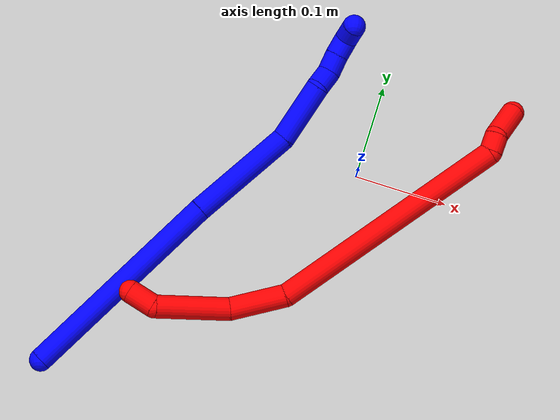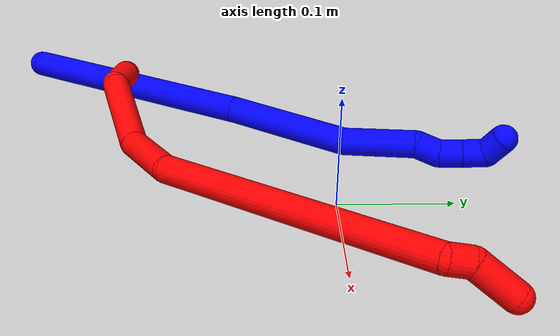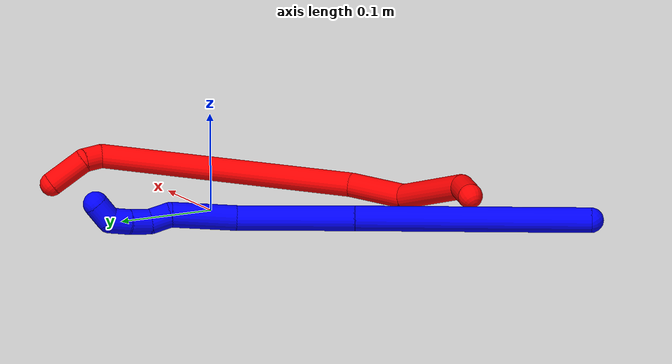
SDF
<sdf version="1.7">
 <world name="default">
  <plugin name="TubeGeneratorPlugin" filename="libtube_generator_plugin.so"/>
  <model name="photoneo_s_sensor">
   <static>1</static>
   <pose>0 0 2 1.57079 1.57079 3.14159</pose>
   <link name="link">
    <inertial><mass>0.1</mass></inertial>
    <sensor name="sensor" type="depth">
     <update_rate>30</update_rate>
     <camera>
      <horizontal_fov>1.22</horizontal_fov>
      <image><width>1920</width><height>1200</height><format>B8G8R8</format></image>
      <clip><near>0.1</near><far>4</far></clip>
      <depth_camera><output>points</output></depth_camera>
     </camera>
     <plugin name="camera_plugin" filename="libgazebo_ros_depth_camera.so">
      <baseline>0.2</baseline>
      <alwaysOn>1</alwaysOn>
      <updateRate>0.0</updateRate>
      <cameraName>camera_ir</cameraName>
      <imageTopicName>/camera/color/image_raw</imageTopicName>
      <cameraInfoTopicName>/camera/color/camera_info</cameraInfoTopicName>
      <depthImageTopicName>/camera/depth/image_raw</depthImageTopicName>
      <depthImageCameraInfoTopicName>/camera/depth/camera_info</depthImageCameraInfoTopicName>
      <pointCloudTopicName>/camera/depth/points</pointCloudTopicName>
      <frameName>fr_optical</frameName>
      <pointCloudCutoff>0.1</pointCloudCutoff>
      <pointCloudCutoffMax>2.0</pointCloudCutoffMax>
      <distortionK1>0</distortionK1>
      <distortionK2>0</distortionK2>
      <distortionK3>0</distortionK3>
      <distortionT1>0</distortionT1>
      <distortionT2>0</distortionT2>
      <CxPrime>0</CxPrime>
      <Cx>0</Cx>
      <Cy>0</Cy>
      <focalLength>0</focalLength>
      <hackBaseline>0</hackBaseline>
     </plugin>
    </sensor>
   </link>
  </model>
  <gravity>0 0 -9.8</gravity>
  <magnetic_field>6e-06 2.3e-05 -4.2e-05</magnetic_field>
  <atmosphere type="adiabatic"/>
  <physics name="default_physics" default="0" type="ode">
   <max_step_size>0.003</max_step_size>
   <real_time_factor>1</real_time_factor>
   <real_time_update_rate>1000</real_time_update_rate>
   <max_contacts>10000</max_contacts>
   <ode>
    <solver>
     <type>quick</type>
     <iters>100</iters>
     <sor>1.3</sor>
     <use_dynamic_moi_rescaling>0</use_dynamic_moi_rescaling>
    </solver>
    <constraints>
     <contact_max_correcting_vel>0</contact_max_correcting_vel>
     <contact_surface_layer>0.001</contact_surface_layer>
     <cfm>0</cfm>
     <erp>0.2</erp>
    </constraints>
   </ode>
  </physics>
  <scene><ambient>0.4 0.4 0.4 1</ambient><background>0.7 0.7 0.7 1</background><shadows>0</shadows></scene>
  <audio><device>default</device></audio>
  <spherical_coordinates>
   <surface_model>EARTH_WGS84</surface_model>
   <latitude_deg>0</latitude_deg>
   <longitude_deg>0</longitude_deg>
   <elevation>0</elevation>
   <heading_deg>0</heading_deg>
  </spherical_coordinates>
  <model name="bin">
   <static>1</static>
   <link name="bottom">
    <collision name="collision-bottom">
     <pose>0 0 -0.01 0 -0 0</pose>
     <geometry><box><size>0.8 0.6 0.02</size></box></geometry>
     <surface>
      <friction><ode><mu>100</mu><mu2>100</mu2></ode></friction>
      <contact><collide_bitmask>65535</collide_bitmask></contact>
     </surface>
    </collision>
   </link>
   <link name="west_wall">
    <collision name="collision-west_wall">
     <pose>-0.41 0 0.1 0 -0 0</pose>
     <geometry><box><size>0.02 0.6 0.2</size></box></geometry>
     <surface>
      <friction><ode><mu>100</mu><mu2>100</mu2></ode></friction>
      <contact><collide_bitmask>65535</collide_bitmask></contact>
     </surface>
    </collision>
   </link>
   <link name="east_wall">
    <collision name="collision-east_wall">
     <pose>0.41 0 0.1 0 -0 0</pose>
     <geometry><box><size>0.02 0.6 0.2</size></box></geometry>
     <surface>
      <friction><ode><mu>100</mu><mu2>100</mu2></ode></friction>
      <contact><collide_bitmask>65535</collide_bitmask></contact>
     </surface>
    </collision>
   </link>
   <link name="south_wall">
    <collision name="collision-south_wall">
     <pose>0 -0.31 0.1 0 -0 0</pose>
     <geometry><box><size>0.8 0.02 0.2</size></box></geometry>
     <surface>
      <friction><ode><mu>100</mu><mu2>100</mu2></ode></friction>
      <contact><collide_bitmask>65535</collide_bitmask></contact>
     </surface>
    </collision>
   </link>
   <link name="north_wall">
    <collision name="collision-north_wall">
     <pose>0 0.31 0.1 0 -0 0</pose>
     <geometry><box><size>0.8 0.02 0.2</size></box></geometry>
     <surface>
      <friction><ode><mu>100</mu><mu2>100</mu2></ode></friction>
      <contact><collide_bitmask>65535</collide_bitmask></contact>
     </surface>
    </collision>
   </link>
  </model>
  <model name="1">
   <static>0</static>
   <link name="1">
    <collision name="collision-cylinder-e_1_1_4">
     <pose>0.043041 0.074659 -0.0781 -2.37872 0.379093 -0.892327</pose>
     <geometry><cylinder><radius>0.0125</radius><length>0.232603</length></cylinder></geometry>
     <surface>
      <friction><ode><mu>1.16</mu><mu2>1.16</mu2><slip1>0</slip1><slip2>0</slip2></ode></friction>
      <contact><ode><kp>1e+06</kp><kd>1</kd><max_vel>0</max_vel><min_depth>0.001</min_depth></ode></contact>
     </surface>
    </collision>
    <visual name="visual-cylinder-e_1_1_4">
     <pose>0.043041 0.074659 -0.0781 -2.37872 0.379093 -0.892327</pose>
     <geometry><cylinder><radius>0.0125</radius><length>0.232603</length></cylinder></geometry>
     <material><ambient>0 0 1 1</ambient></material>
    </visual>
    <collision name="collision-cylinder-e_2_4_5">
     <pose>0.110505 0.186871 -0.194077 -2.36049 0.429411 -0.974212</pose>
     <geometry><cylinder><radius>0.0125</radius><length>0.117329</length></cylinder></geometry>
     <surface>
      <friction><ode><mu>1.16</mu><mu2>1.16</mu2><slip1>0</slip1><slip2>0</slip2></ode></friction>
      <contact><ode><kp>1e+06</kp><kd>1</kd><max_vel>0</max_vel><min_depth>0.001</min_depth></ode></contact>
     </surface>
    </collision>
    <visual name="visual-cylinder-e_2_4_5">
     <pose>0.110505 0.186871 -0.194077 -2.36049 0.429411 -0.974212</pose>
     <geometry><cylinder><radius>0.0125</radius><length>0.117329</length></cylinder></geometry>
     <material><ambient>0 0 1 1</ambient></material>
    </visual>
    <collision name="collision-cylinder-e_3_5_6">
     <pose>0.139721 0.24566 -0.256874 -2.43582 0.145332 -0.390264</pose>
     <geometry><cylinder><radius>0.0125</radius><length>0.066178</length></cylinder></geometry>
     <surface>
      <friction><ode><mu>1.16</mu><mu2>1.16</mu2><slip1>0</slip1><slip2>0</slip2></ode></friction>
      <contact><ode><kp>1e+06</kp><kd>1</kd><max_vel>0</max_vel><min_depth>0.001</min_depth></ode></contact>
     </surface>
    </collision>
    <visual name="visual-cylinder-e_3_5_6">
     <pose>0.139721 0.24566 -0.256874 -2.43582 0.145332 -0.390264</pose>
     <geometry><cylinder><radius>0.0125</radius><length>0.066178</length></cylinder></geometry>
     <material><ambient>0 0 1 1</ambient></material>
    </visual>
    <collision name="collision-cylinder-e_4_6_7">
     <pose>0.148574 0.270534 -0.290789 -2.75729 0.396283 -1.60227</pose>
     <geometry><cylinder><radius>0.0125</radius><length>0.021039</length></cylinder></geometry>
     <surface>
      <friction><ode><mu>1.16</mu><mu2>1.16</mu2><slip1>0</slip1><slip2>0</slip2></ode></friction>
      <contact><ode><kp>1e+06</kp><kd>1</kd><max_vel>0</max_vel><min_depth>0.001</min_depth></ode></contact>
     </surface>
    </collision>
    <visual name="visual-cylinder-e_4_6_7">
     <pose>0.148574 0.270534 -0.290789 -2.75729 0.396283 -1.60227</pose>
     <geometry><cylinder><radius>0.0125</radius><length>0.021039</length></cylinder></geometry>
     <material><ambient>0 0 1 1</ambient></material>
    </visual>
    <collision name="collision-cylinder-e_5_7_8">
     <pose>0.15308 0.280044 -0.308571 -2.55244 0.042227 -0.138975</pose>
     <geometry><cylinder><radius>0.0125</radius><length>0.021152</length></cylinder></geometry>
     <surface>
      <friction><ode><mu>1.16</mu><mu2>1.16</mu2><slip1>0</slip1><slip2>0</slip2></ode></friction>
      <contact><ode><kp>1e+06</kp><kd>1</kd><max_vel>0</max_vel><min_depth>0.001</min_depth></ode></contact>
     </surface>
    </collision>
    <visual name="visual-cylinder-e_5_7_8">
     <pose>0.15308 0.280044 -0.308571 -2.55244 0.042227 -0.138975</pose>
     <geometry><cylinder><radius>0.0125</radius><length>0.021152</length></cylinder></geometry>
     <material><ambient>0 0 1 1</ambient></material>
    </visual>
    <collision name="collision-cylinder-e_6_8_9">
     <pose>0.154283 0.292465 -0.325083 -2.43849 0.074482 -0.202464</pose>
     <geometry><cylinder><radius>0.0125</radius><length>0.020313</length></cylinder></geometry>
     <surface>
      <friction><ode><mu>1.16</mu><mu2>1.16</mu2><slip1>0</slip1><slip2>0</slip2></ode></friction>
      <contact><ode><kp>1e+06</kp><kd>1</kd><max_vel>0</max_vel><min_depth>0.001</min_depth></ode></contact>
     </surface>
    </collision>
    <visual name="visual-cylinder-e_6_8_9">
     <pose>0.154283 0.292465 -0.325083 -2.43849 0.074482 -0.202464</pose>
     <geometry><cylinder><radius>0.0125</radius><length>0.020313</length></cylinder></geometry>
     <material><ambient>0 0 1 1</ambient></material>
    </visual>
    <collision name="collision-cylinder-e_7_9_2">
     <pose>0.151897 0.309075 -0.334611 -1.74796 -0.29817 0.355179</pose>
     <geometry><cylinder><radius>0.0125</radius><length>0.021386</length></cylinder></geometry>
     <surface>
      <friction><ode><mu>1.16</mu><mu2>1.16</mu2><slip1>0</slip1><slip2>0</slip2></ode></friction>
      <contact><ode><kp>1e+06</kp><kd>1</kd><max_vel>0</max_vel><min_depth>0.001</min_depth></ode></contact>
     </surface>
    </collision>
    <visual name="visual-cylinder-e_7_9_2">
     <pose>0.151897 0.309075 -0.334611 -1.74796 -0.29817 0.355179</pose>
     <geometry><cylinder><radius>0.0125</radius><length>0.021386</length></cylinder></geometry>
     <material><ambient>0 0 1 1</ambient></material>
    </visual>
    <collision name="collision-sphere-2">
     <pose>0.148756 0.319136 -0.336412 0 -0 0</pose>
     <geometry><sphere><radius>0.0125</radius></sphere></geometry>
     <surface>
      <friction><ode><mu>1.16</mu><mu2>1.16</mu2><slip1>0</slip1><slip2>0</slip2></ode></friction>
      <contact><ode><kp>1e+06</kp><kd>1</kd><max_vel>0</max_vel><min_depth>0.001</min_depth></ode></contact>
     </surface>
    </collision>
    <visual name="visual-sphere-2">
     <pose>0.148756 0.319136 -0.336412 0 -0 0</pose>
     <geometry><sphere><radius>0.0125</radius></sphere></geometry>
     <material><ambient>0 0 1 1</ambient></material>
    </visual>
    <collision name="collision-sphere-9">
     <pose>0.155039 0.299014 -0.332809 0 -0 0</pose>
     <geometry><sphere><radius>0.0125</radius></sphere></geometry>
     <surface>
      <friction><ode><mu>1.16</mu><mu2>1.16</mu2><slip1>0</slip1><slip2>0</slip2></ode></friction>
      <contact><ode><kp>1e+06</kp><kd>1</kd><max_vel>0</max_vel><min_depth>0.001</min_depth></ode></contact>
     </surface>
    </collision>
    <visual name="visual-sphere-9">
     <pose>0.155039 0.299014 -0.332809 0 -0 0</pose>
     <geometry><sphere><radius>0.0125</radius></sphere></geometry>
     <material><ambient>0 0 1 1</ambient></material>
    </visual>
    <collision name="collision-sphere-4">
     <pose>0.086081 0.149317 -0.1562 0 -0 0</pose>
     <geometry><sphere><radius>0.0125</radius></sphere></geometry>
     <surface>
      <friction><ode><mu>1.16</mu><mu2>1.16</mu2><slip1>0</slip1><slip2>0</slip2></ode></friction>
      <contact><ode><kp>1e+06</kp><kd>1</kd><max_vel>0</max_vel><min_depth>0.001</min_depth></ode></contact>
     </surface>
    </collision>
    <visual name="visual-sphere-4">
     <pose>0.086081 0.149317 -0.1562 0 -0 0</pose>
     <geometry><sphere><radius>0.0125</radius></sphere></geometry>
     <material><ambient>0 0 1 1</ambient></material>
    </visual>
    <collision name="collision-sphere-1">
     <geometry><sphere><radius>0.0125</radius></sphere></geometry>
     <surface>
      <friction><ode><mu>1.16</mu><mu2>1.16</mu2><slip1>0</slip1><slip2>0</slip2></ode></friction>
      <contact><ode><kp>1e+06</kp><kd>1</kd><max_vel>0</max_vel><min_depth>0.001</min_depth></ode></contact>
     </surface>
    </collision>
    <visual name="visual-sphere-1">
     <geometry><sphere><radius>0.0125</radius></sphere></geometry>
     <material><ambient>0 0 1 1</ambient></material>
    </visual>
    <collision name="collision-sphere-8">
     <pose>0.153527 0.285916 -0.317356 0 -0 0</pose>
     <geometry><sphere><radius>0.0125</radius></sphere></geometry>
     <surface>
      <friction><ode><mu>1.16</mu><mu2>1.16</mu2><slip1>0</slip1><slip2>0</slip2></ode></friction>
      <contact><ode><kp>1e+06</kp><kd>1</kd><max_vel>0</max_vel><min_depth>0.001</min_depth></ode></contact>
     </surface>
    </collision>
    <visual name="visual-sphere-8">
     <pose>0.153527 0.285916 -0.317356 0 -0 0</pose>
     <geometry><sphere><radius>0.0125</radius></sphere></geometry>
     <material><ambient>0 0 1 1</ambient></material>
    </visual>
    <collision name="collision-sphere-5">
     <pose>0.134929 0.224424 -0.231955 0 -0 0</pose>
     <geometry><sphere><radius>0.0125</radius></sphere></geometry>
     <surface>
      <friction><ode><mu>1.16</mu><mu2>1.16</mu2><slip1>0</slip1><slip2>0</slip2></ode></friction>
      <contact><ode><kp>1e+06</kp><kd>1</kd><max_vel>0</max_vel><min_depth>0.001</min_depth></ode></contact>
     </surface>
    </collision>
    <visual name="visual-sphere-5">
     <pose>0.134929 0.224424 -0.231955 0 -0 0</pose>
     <geometry><sphere><radius>0.0125</radius></sphere></geometry>
     <material><ambient>0 0 1 1</ambient></material>
    </visual>
    <collision name="collision-sphere-6">
     <pose>0.144513 0.266896 -0.281793 0 -0 0</pose>
     <geometry><sphere><radius>0.0125</radius></sphere></geometry>
     <surface>
      <friction><ode><mu>1.16</mu><mu2>1.16</mu2><slip1>0</slip1><slip2>0</slip2></ode></friction>
      <contact><ode><kp>1e+06</kp><kd>1</kd><max_vel>0</max_vel><min_depth>0.001</min_depth></ode></contact>
     </surface>
    </collision>
    <visual name="visual-sphere-6">
     <pose>0.144513 0.266896 -0.281793 0 -0 0</pose>
     <geometry><sphere><radius>0.0125</radius></sphere></geometry>
     <material><ambient>0 0 1 1</ambient></material>
    </visual>
    <collision name="collision-sphere-7">
     <pose>0.152634 0.274173 -0.299786 0 -0 0</pose>
     <geometry><sphere><radius>0.0125</radius></sphere></geometry>
     <surface>
      <friction><ode><mu>1.16</mu><mu2>1.16</mu2><slip1>0</slip1><slip2>0</slip2></ode></friction>
      <contact><ode><kp>1e+06</kp><kd>1</kd><max_vel>0</max_vel><min_depth>0.001</min_depth></ode></contact>
     </surface>
    </collision>
    <visual name="visual-sphere-7">
     <pose>0.152634 0.274173 -0.299786 0 -0 0</pose>
     <geometry><sphere><radius>0.0125</radius></sphere></geometry>
     <material><ambient>0 0 1 1</ambient></material>
    </visual>
    <inertial>
     <pose>0.089939 0.159429 -0.168682 0 -0 0</pose>
     <mass>0.5</mass>
     <inertia>
      <ixx>-0.000153</ixx>
      <ixy>0</ixy>
      <ixz>0</ixz>
      <iyy>-0.001168</iyy>
      <iyz>0</iyz>
      <izz>-0.001269</izz>
     </inertia>
    </inertial>
   </link>
   <pose>-0.260986 -0.288504 0.012407 1.09131 0.599194 -0.036586</pose>
  </model>
  <model name="2">
   <static>0</static>
   <link name="2">
    <collision name="collision-cylinder-e_1_1_4">
     <pose>-0.006213 0.006864 -0.011609 -2.60759 -0.431698 1.35144</pose>
     <geometry><cylinder><radius>0.0125</radius><length>0.029697</length></cylinder></geometry>
     <surface>
      <friction><ode><mu>1.16</mu><mu2>1.16</mu2><slip1>0</slip1><slip2>0</slip2></ode></friction>
      <contact><ode><kp>1e+06</kp><kd>1</kd><max_vel>0</max_vel><min_depth>0.001</min_depth></ode></contact>
     </surface>
    </collision>
    <visual name="visual-cylinder-e_1_1_4">
     <pose>-0.006213 0.006864 -0.011609 -2.60759 -0.431698 1.35144</pose>
     <geometry><cylinder><radius>0.0125</radius><length>0.029697</length></cylinder></geometry>
     <material><ambient>1 0 0 1</ambient></material>
    </visual>
    <collision name="collision-cylinder-e_2_4_5">
     <pose>-0.010828 0.048625 -0.045002 -2.12886 0.038823 -0.069983</pose>
     <geometry><cylinder><radius>0.0125</radius><length>0.082338</length></cylinder></geometry>
     <surface>
      <friction><ode><mu>1.16</mu><mu2>1.16</mu2><slip1>0</slip1><slip2>0</slip2></ode></friction>
      <contact><ode><kp>1e+06</kp><kd>1</kd><max_vel>0</max_vel><min_depth>0.001</min_depth></ode></contact>
     </surface>
    </collision>
    <visual name="visual-cylinder-e_2_4_5">
     <pose>-0.010828 0.048625 -0.045002 -2.12886 0.038823 -0.069983</pose>
     <geometry><cylinder><radius>0.0125</radius><length>0.082338</length></cylinder></geometry>
     <material><ambient>1 0 0 1</ambient></material>
    </visual>
    <collision name="collision-cylinder-e_3_5_6">
     <pose>0.001391 0.102221 -0.08937 -2.45001 0.347552 -0.906822</pose>
     <geometry><cylinder><radius>0.0125</radius><length>0.062369</length></cylinder></geometry>
     <surface>
      <friction><ode><mu>1.16</mu><mu2>1.16</mu2><slip1>0</slip1><slip2>0</slip2></ode></friction>
      <contact><ode><kp>1e+06</kp><kd>1</kd><max_vel>0</max_vel><min_depth>0.001</min_depth></ode></contact>
     </surface>
    </collision>
    <visual name="visual-cylinder-e_3_5_6">
     <pose>0.001391 0.102221 -0.08937 -2.45001 0.347552 -0.906822</pose>
     <geometry><cylinder><radius>0.0125</radius><length>0.062369</length></cylinder></geometry>
     <material><ambient>1 0 0 1</ambient></material>
    </visual>
    <collision name="collision-cylinder-e_4_6_7">
     <pose>0.098856 0.188894 -0.184587 -2.38932 0.717681 -1.51923</pose>
     <geometry><cylinder><radius>0.0125</radius><length>0.264107</length></cylinder></geometry>
     <surface>
      <friction><ode><mu>1.16</mu><mu2>1.16</mu2><slip1>0</slip1><slip2>0</slip2></ode></friction>
      <contact><ode><kp>1e+06</kp><kd>1</kd><max_vel>0</max_vel><min_depth>0.001</min_depth></ode></contact>
     </surface>
    </collision>
    <visual name="visual-cylinder-e_4_6_7">
     <pose>0.098856 0.188894 -0.184587 -2.38932 0.717681 -1.51923</pose>
     <geometry><cylinder><radius>0.0125</radius><length>0.264107</length></cylinder></geometry>
     <material><ambient>1 0 0 1</ambient></material>
    </visual>
    <collision name="collision-cylinder-e_5_7_8">
     <pose>0.195091 0.260708 -0.257041 -1.52364 1.18228 -1.13902</pose>
     <geometry><cylinder><radius>0.0125</radius><length>0.020294</length></cylinder></geometry>
     <surface>
      <friction><ode><mu>1.16</mu><mu2>1.16</mu2><slip1>0</slip1><slip2>0</slip2></ode></friction>
      <contact><ode><kp>1e+06</kp><kd>1</kd><max_vel>0</max_vel><min_depth>0.001</min_depth></ode></contact>
     </surface>
    </collision>
    <visual name="visual-cylinder-e_5_7_8">
     <pose>0.195091 0.260708 -0.257041 -1.52364 1.18228 -1.13902</pose>
     <geometry><cylinder><radius>0.0125</radius><length>0.020294</length></cylinder></geometry>
     <material><ambient>1 0 0 1</ambient></material>
    </visual>
    <collision name="collision-cylinder-e_6_8_2">
     <pose>0.217024 0.280596 -0.253792 -1.38194 0.654687 -0.54751</pose>
     <geometry><cylinder><radius>0.0125</radius><length>0.041195</length></cylinder></geometry>
     <surface>
      <friction><ode><mu>1.16</mu><mu2>1.16</mu2><slip1>0</slip1><slip2>0</slip2></ode></friction>
      <contact><ode><kp>1e+06</kp><kd>1</kd><max_vel>0</max_vel><min_depth>0.001</min_depth></ode></contact>
     </surface>
    </collision>
    <visual name="visual-cylinder-e_6_8_2">
     <pose>0.217024 0.280596 -0.253792 -1.38194 0.654687 -0.54751</pose>
     <geometry><cylinder><radius>0.0125</radius><length>0.041195</length></cylinder></geometry>
     <material><ambient>1 0 0 1</ambient></material>
    </visual>
    <collision name="collision-sphere-2">
     <pose>0.229566 0.296644 -0.250725 0 -0 0</pose>
     <geometry><sphere><radius>0.0125</radius></sphere></geometry>
     <surface>
      <friction><ode><mu>1.16</mu><mu2>1.16</mu2><slip1>0</slip1><slip2>0</slip2></ode></friction>
      <contact><ode><kp>1e+06</kp><kd>1</kd><max_vel>0</max_vel><min_depth>0.001</min_depth></ode></contact>
     </surface>
    </collision>
    <visual name="visual-sphere-2">
     <pose>0.229566 0.296644 -0.250725 0 -0 0</pose>
     <geometry><sphere><radius>0.0125</radius></sphere></geometry>
     <material><ambient>1 0 0 1</ambient></material>
    </visual>
    <collision name="collision-sphere-4">
     <pose>-0.012426 0.013729 -0.023217 0 -0 0</pose>
     <geometry><sphere><radius>0.0125</radius></sphere></geometry>
     <surface>
      <friction><ode><mu>1.16</mu><mu2>1.16</mu2><slip1>0</slip1><slip2>0</slip2></ode></friction>
      <contact><ode><kp>1e+06</kp><kd>1</kd><max_vel>0</max_vel><min_depth>0.001</min_depth></ode></contact>
     </surface>
    </collision>
    <visual name="visual-sphere-4">
     <pose>-0.012426 0.013729 -0.023217 0 -0 0</pose>
     <geometry><sphere><radius>0.0125</radius></sphere></geometry>
     <material><ambient>1 0 0 1</ambient></material>
    </visual>
    <collision name="collision-sphere-1">
     <geometry><sphere><radius>0.0125</radius></sphere></geometry>
     <surface>
      <friction><ode><mu>1.16</mu><mu2>1.16</mu2><slip1>0</slip1><slip2>0</slip2></ode></friction>
      <contact><ode><kp>1e+06</kp><kd>1</kd><max_vel>0</max_vel><min_depth>0.001</min_depth></ode></contact>
     </surface>
    </collision>
    <visual name="visual-sphere-1">
     <geometry><sphere><radius>0.0125</radius></sphere></geometry>
     <material><ambient>1 0 0 1</ambient></material>
    </visual>
    <collision name="collision-sphere-8">
     <pose>0.204482 0.264548 -0.25686 0 -0 0</pose>
     <geometry><sphere><radius>0.0125</radius></sphere></geometry>
     <surface>
      <friction><ode><mu>1.16</mu><mu2>1.16</mu2><slip1>0</slip1><slip2>0</slip2></ode></friction>
      <contact><ode><kp>1e+06</kp><kd>1</kd><max_vel>0</max_vel><min_depth>0.001</min_depth></ode></contact>
     </surface>
    </collision>
    <visual name="visual-sphere-8">
     <pose>0.204482 0.264548 -0.25686 0 -0 0</pose>
     <geometry><sphere><radius>0.0125</radius></sphere></geometry>
     <material><ambient>1 0 0 1</ambient></material>
    </visual>
    <collision name="collision-sphere-5">
     <pose>-0.00923 0.083522 -0.066786 0 -0 0</pose>
     <geometry><sphere><radius>0.0125</radius></sphere></geometry>
     <surface>
      <friction><ode><mu>1.16</mu><mu2>1.16</mu2><slip1>0</slip1><slip2>0</slip2></ode></friction>
      <contact><ode><kp>1e+06</kp><kd>1</kd><max_vel>0</max_vel><min_depth>0.001</min_depth></ode></contact>
     </surface>
    </collision>
    <visual name="visual-sphere-5">
     <pose>-0.00923 0.083522 -0.066786 0 -0 0</pose>
     <geometry><sphere><radius>0.0125</radius></sphere></geometry>
     <material><ambient>1 0 0 1</ambient></material>
    </visual>
    <collision name="collision-sphere-6">
     <pose>0.012013 0.12092 -0.111953 0 -0 0</pose>
     <geometry><sphere><radius>0.0125</radius></sphere></geometry>
     <surface>
      <friction><ode><mu>1.16</mu><mu2>1.16</mu2><slip1>0</slip1><slip2>0</slip2></ode></friction>
      <contact><ode><kp>1e+06</kp><kd>1</kd><max_vel>0</max_vel><min_depth>0.001</min_depth></ode></contact>
     </surface>
    </collision>
    <visual name="visual-sphere-6">
     <pose>0.012013 0.12092 -0.111953 0 -0 0</pose>
     <geometry><sphere><radius>0.0125</radius></sphere></geometry>
     <material><ambient>1 0 0 1</ambient></material>
    </visual>
    <collision name="collision-sphere-7">
     <pose>0.1857 0.256868 -0.257222 0 -0 0</pose>
     <geometry><sphere><radius>0.0125</radius></sphere></geometry>
     <surface>
      <friction><ode><mu>1.16</mu><mu2>1.16</mu2><slip1>0</slip1><slip2>0</slip2></ode></friction>
      <contact><ode><kp>1e+06</kp><kd>1</kd><max_vel>0</max_vel><min_depth>0.001</min_depth></ode></contact>
     </surface>
    </collision>
    <visual name="visual-sphere-7">
     <pose>0.1857 0.256868 -0.257222 0 -0 0</pose>
     <geometry><sphere><radius>0.0125</radius></sphere></geometry>
     <material><ambient>1 0 0 1</ambient></material>
    </visual>
    <inertial>
     <pose>0.076038 0.154642 -0.148092 0 -0 0</pose>
     <mass>0.5</mass>
     <inertia>
      <ixx>-0.001037</ixx>
      <ixy>0</ixy>
      <ixz>0</ixz>
      <iyy>-0.000553</iyy>
      <iyz>0</iyz>
      <izz>-0.001909</izz>
     </inertia>
    </inertial>
   </link>
   <pose>-0.190627 -0.191607 0.033206 -2.28646 -0.162956 1.76752</pose>
  </model>
 </world>
</sdf>
